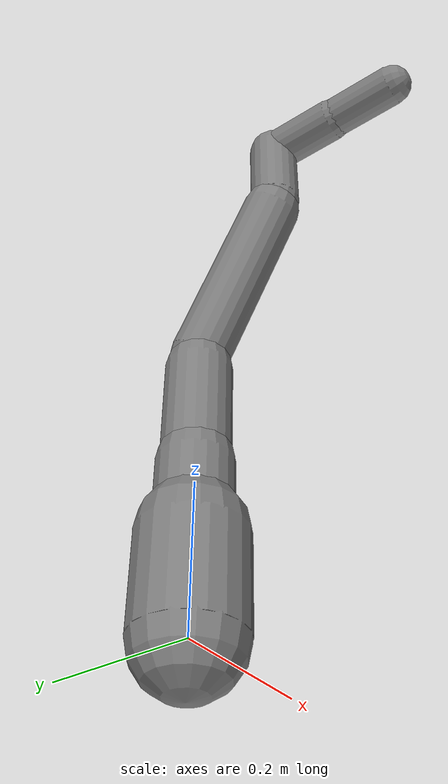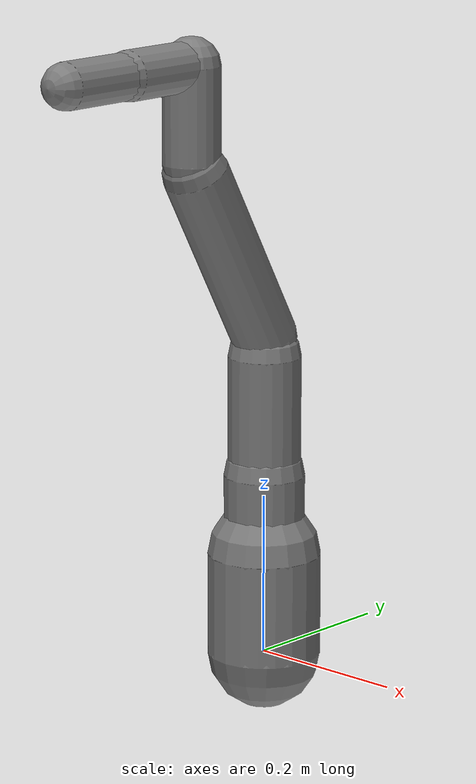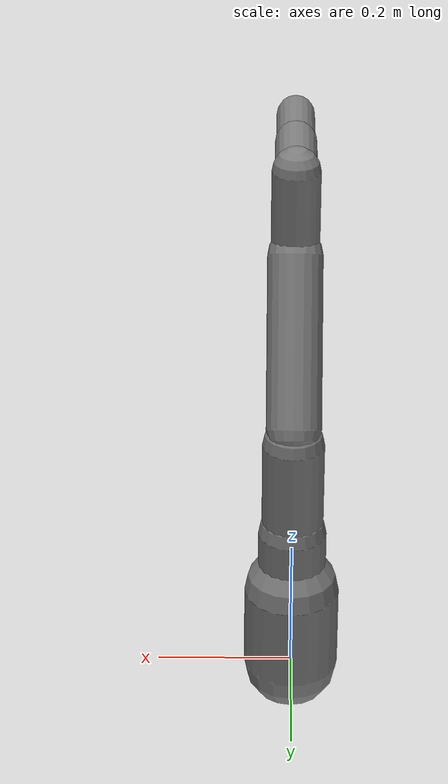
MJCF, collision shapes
<?xml version='1.0' encoding='utf-8'?>
<mujoco model="CR3URDF">
  <compiler angle="radian" meshdir="assets" autolimits="true" />

  <option timestep="0.002" integrator="implicitfast" cone="elliptic" impratio="10" />

  <default>
    <default class="cr3">
      <material specular="0.5" shininess="0.25" />
      <joint damping="2" armature="0.05" limited="true" axis="0 0 1" />
      <general dyntype="none" gaintype="fixed" biastype="affine" forcerange="-200 200" />
      <geom friction="0.8 0.1 0.1" />
      <default class="visual">
        <geom type="mesh" contype="0" conaffinity="0" group="2" rgba="0.95 0.95 0.95 1" />
      </default>
      <default class="collision">
        <geom group="3" rgba="0.5 0.5 0.5 1" />
      </default>
    </default>
  </default>
  <asset>
    <mesh name="base_link" file="base_link.STL" />
    <mesh name="Link1" file="Link1.STL" />
    <mesh name="Link2" file="Link2.STL" />
    <mesh name="Link3" file="Link3.STL" />
    <mesh name="Link4" file="Link4.STL" />
    <mesh name="Link5" file="Link5.STL" />
    <mesh name="Link6" file="Link6.STL" />
  </asset>
  <worldbody>

    <body name="base_link" childclass="cr3">
      <geom mesh="base_link" class="visual" type="mesh" />
      <body name="Link1" pos="0 0 0.1283">
        <inertial pos="-3.68658e-05 -0.00394517 0.00364038" quat="0.668079 0.224285 -0.228154 0.671798" mass="1.31101" diaginertia="0.00217669 0.00202531 0.00164384" />
        <joint name="joint1" pos="0 0 0" axis="0 0 1" range="-3.14 3.14" />
        <geom type="mesh" mesh="Link1" class="visual" />
        <body name="Link2" quat="0.499998 0.5 0.5 -0.500002">
          <inertial pos="-0.129235 1.44054e-05 0.133174" quat="0.483434 0.51644 0.516337 0.482677" mass="3.40044" diaginertia="0.0063233 0.00578813 0.00450009" />
          <joint name="joint2" pos="0 0 0" axis="0 0 1" range="-3.14 3.14" />
          <geom type="mesh" mesh="Link2" class="visual" />
          <body name="Link3" pos="-0.274 0 0">
            <inertial pos="-0.119823 8.63344e-08 0.00998766" quat="0.432122 0.559713 0.559721 0.432092" mass="2.21449" diaginertia="0.00313635 0.0028872 0.00232519" />
            <joint name="joint3" pos="0 0 0" axis="0 0 1" range="-3.14 3.14" />
            <geom type="mesh" mesh="Link3" class="visual" />
            <body name="Link4" pos="-0.23 0 0.1283" quat="0.707105 0 0 -0.707108">
              <inertial pos="1.7468e-07 0.00345224 -0.0028731" quat="0.601412 0.371834 -0.371869 0.601462" mass="0.842273" diaginertia="0.00106054 0.0010039 0.000726821" />
              <joint name="joint4" pos="0 0 0" axis="0 0 1" range="-3.14 3.14" />
              <geom type="mesh" mesh="Link4" class="visual" />
              <body name="Link5" pos="0 -0.116 0" quat="0.707105 0.707108 0 0">
                <inertial pos="-1.74604e-07 -0.00333192 -0.00286781" quat="0.37287 0.600892 -0.600772 0.372788" mass="0.843693" diaginertia="0.00106485 0.00100855 0.000728263" />
                <joint name="joint5" pos="0 0 0" axis="0 0 1" range="-3.14 3.14" />
                <geom type="mesh" mesh="Link5" class="visual" />
                <body name="Link6" pos="0 0.105 0" quat="0.707105 -0.707108 0 0">
                  <inertial pos="-5.77233e-07 0.000270131 -0.0201387" quat="-0.00177703 0.707105 -0.000182648 0.707107" mass="0.159409" diaginertia="0.000131911 8.35925e-05 8.29484e-05" />
                  <joint name="joint6" pos="0 0 0" axis="0 0 1" range="-3.14 3.14" />
                  <geom type="mesh" mesh="Link6" class="visual" />
                  <site name="tcp" pos="0 0 0.08" size="0.01" rgba="1 0 0 1" />
                <geom class="collision" type="capsule" fromto="0 0 0 0.0000 0.0000 0.1000" size="0.0280" mass="0" /></body>
                <geom class="collision" type="capsule" fromto="0 0 0 0.0000 0.1050 0.0000" size="0.0300" mass="0" /></body>
              <geom class="collision" type="capsule" fromto="0 0 0 0.0000 -0.1160 0.0000" size="0.0350" mass="0" /></body>
            <geom class="collision" type="capsule" fromto="0 0 0 -0.2183 0.0000 0.1218" size="0.0400" mass="0" /></body>
          <geom class="collision" type="capsule" fromto="0 0 0 -0.2500 0.0000 0.0000" size="0.0450" mass="0" /></body>
        <geom class="collision" type="capsule" fromto="0 0 0 0.0000 0.0000 0.1000" size="0.0500" mass="0" /></body>
    <geom class="collision" type="capsule" fromto="0 0 0 0.0000 0.0000 0.1283" size="0.0700" mass="0" /></body>
  </worldbody>
  <actuator>

    <general class="cr3" name="act_joint1" joint="joint1" gainprm="300" biasprm="0 -300 -30" ctrlrange="-3.14 3.14" />
    <general class="cr3" name="act_joint2" joint="joint2" gainprm="400" biasprm="0 -400 -40" ctrlrange="-3.14 3.14" />
    <general class="cr3" name="act_joint3" joint="joint3" gainprm="300" biasprm="0 -300 -30" ctrlrange="-3.14 3.14" />
    <general class="cr3" name="act_joint4" joint="joint4" gainprm="250" biasprm="0 -250 -25" ctrlrange="-3.14 3.14" />
    <general class="cr3" name="act_joint5" joint="joint5" gainprm="200" biasprm="0 -200 -20" ctrlrange="-3.14 3.14" />
    <general class="cr3" name="act_joint6" joint="joint6" gainprm="150" biasprm="0 -150 -15" ctrlrange="-3.14 3.14" />
  </actuator>

  <keyframe>
    <key name="home" qpos="0.0982 -0.525 0.0419 -1.22 -0.838 0" ctrl="0.0982 -0.525 0.0419 -1.22 -0.838 0" />
  </keyframe>

  <contact>
    <exclude body1="base_link" body2="Link1" />

 <exclude body1="Link1" body2="Link2" /><exclude body1="Link2" body2="Link3" /><exclude body1="Link3" body2="Link4" /><exclude body1="Link4" body2="Link5" /><exclude body1="Link5" body2="Link6" /></contact>

</mujoco>
